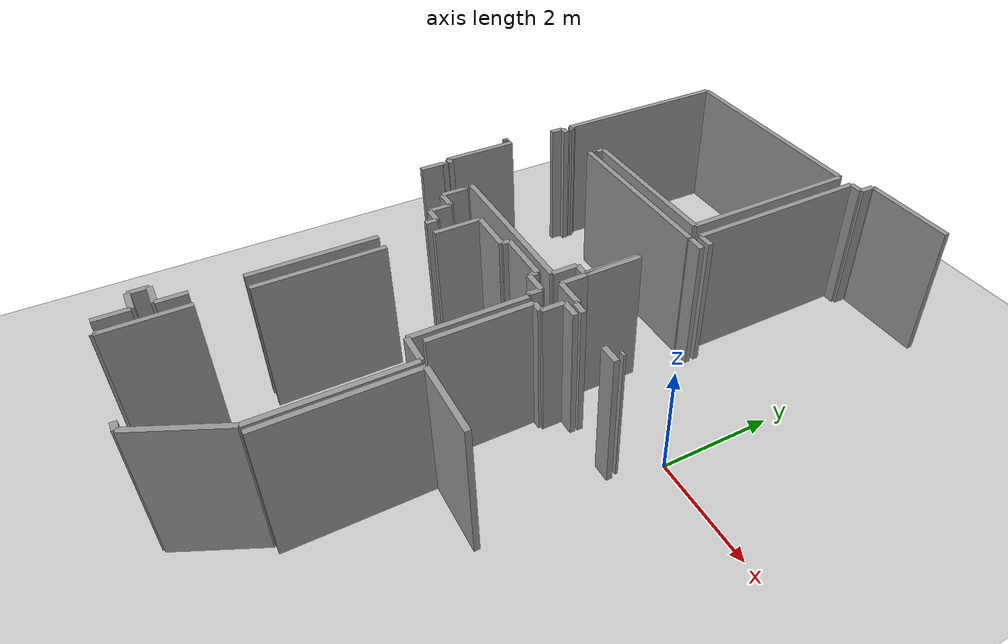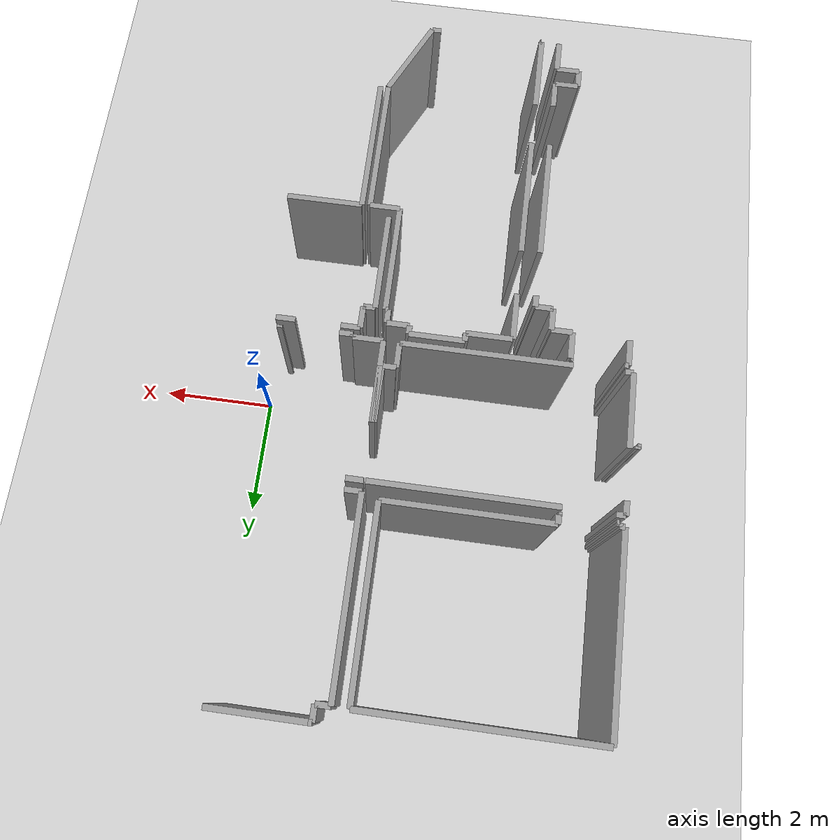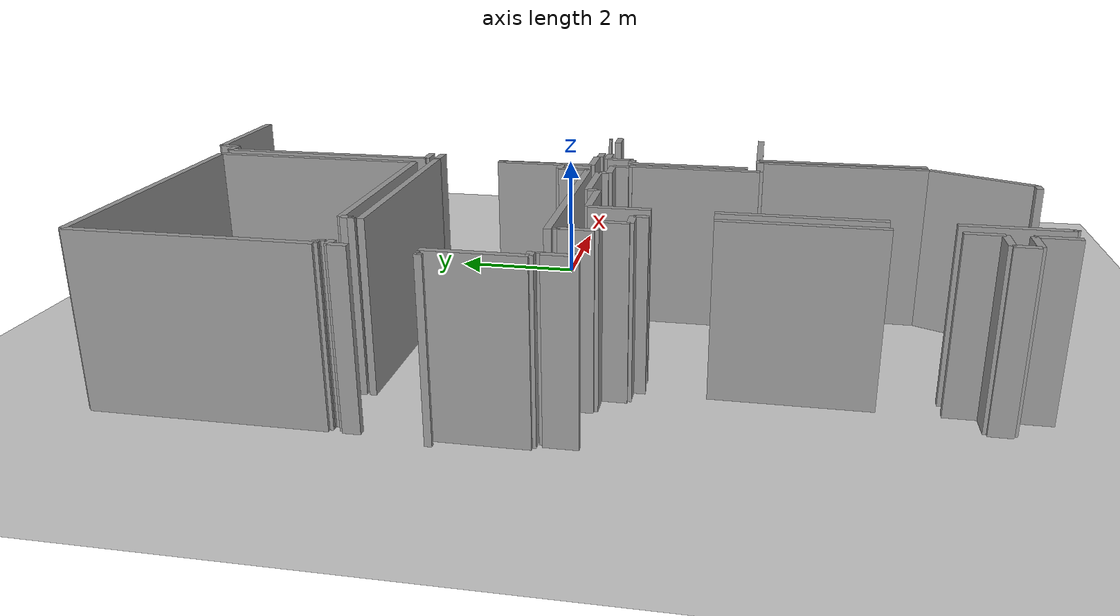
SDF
<sdf version="1.6">
 <world name="default">
  <model name="ground_plane">
   <static>1</static>
   <link name="link">
    <collision name="collision">
     <geometry><plane><normal>0 0 1</normal><size>100 100</size></plane></geometry>
     <surface><friction><ode><mu>100</mu><mu2>50</mu2></ode></friction></surface>
    </collision>
    <visual name="visual">
     <cast_shadows>0</cast_shadows>
     <geometry><plane><normal>0 0 1</normal><size>100 100</size></plane></geometry>
     <material>
      <script><uri>file://media/materials/scripts/gazebo.material</uri><name>Gazebo/Grey</name></script>
     </material>
    </visual>
   </link>
  </model>
  <model name="0510025537_Layout1_PLAN1">
   <static>1</static>
   <link name="Wall_99">
    <collision name="Wall_99_Collision">
     <geometry><box><size>0.457456948592 0.1 2.5</size></box></geometry>
     <pose>0.228728474296 0 1.25 0 0 0</pose>
    </collision>
    <visual name="Wall_99_Visual">
     <pose>0.228728474296 0 1.25 0 0 0</pose>
     <geometry><box><size>0.457456948592 0.1 2.5</size></box></geometry>
     <material>
      <script><uri>file://media/materials/scripts/gazebo.material</uri><name>Gazebo/Grey</name></script>
      <ambient>1 1 1 1</ambient>
     </material>
    </visual>
    <pose>14.1134269556 -6.77237084578 0 0 0 1.57079632679</pose>
   </link>
   <link name="Wall_100">
    <collision name="Wall_100_Collision">
     <geometry><box><size>0.0628455232891 0.1 2.5</size></box></geometry>
     <pose>0.0314227616445 0 1.25 0 0 0</pose>
    </collision>
    <visual name="Wall_100_Visual">
     <pose>0.0314227616445 0 1.25 0 0 0</pose>
     <geometry><box><size>0.0628455232891 0.1 2.5</size></box></geometry>
     <material>
      <script><uri>file://media/materials/scripts/gazebo.material</uri><name>Gazebo/Grey</name></script>
      <ambient>1 1 1 1</ambient>
     </material>
    </visual>
    <pose>14.1134269556 -6.31491389718 0 0 0 0.0</pose>
   </link>
   <link name="Wall_101">
    <collision name="Wall_101_Collision">
     <geometry><box><size>0.0469593950562 0.1 2.5</size></box></geometry>
     <pose>0.0234796975281 0 1.25 0 0 0</pose>
    </collision>
    <visual name="Wall_101_Visual">
     <pose>0.0234796975281 0 1.25 0 0 0</pose>
     <geometry><box><size>0.0469593950562 0.1 2.5</size></box></geometry>
     <material>
      <script><uri>file://media/materials/scripts/gazebo.material</uri><name>Gazebo/Grey</name></script>
      <ambient>1 1 1 1</ambient>
     </material>
    </visual>
    <pose>15.0463239499 -6.31491389718 0 0 0 0.0</pose>
   </link>
   <link name="Wall_102">
    <collision name="Wall_102_Collision">
     <geometry><box><size>0.470102306666 0.1 2.5</size></box></geometry>
     <pose>0.235051153333 0 1.25 0 0 0</pose>
    </collision>
    <visual name="Wall_102_Visual">
     <pose>0.235051153333 0 1.25 0 0 0</pose>
     <geometry><box><size>0.470102306666 0.1 2.5</size></box></geometry>
     <material>
      <script><uri>file://media/materials/scripts/gazebo.material</uri><name>Gazebo/Grey</name></script>
      <ambient>1 1 1 1</ambient>
     </material>
    </visual>
    <pose>15.093283345 -6.31491389718 0 0 0 -1.57079632679</pose>
   </link>
   <link name="Wall_103">
    <collision name="Wall_103_Collision">
     <geometry><box><size>0.361250556014 0.1 2.5</size></box></geometry>
     <pose>0.180625278007 0 1.25 0 0 0</pose>
    </collision>
    <visual name="Wall_103_Visual">
     <pose>0.180625278007 0 1.25 0 0 0</pose>
     <geometry><box><size>0.361250556014 0.1 2.5</size></box></geometry>
     <material>
      <script><uri>file://media/materials/scripts/gazebo.material</uri><name>Gazebo/Grey</name></script>
      <ambient>1 1 1 1</ambient>
     </material>
    </visual>
    <pose>15.093283345 -6.78501620385 0 0 0 0.0</pose>
   </link>
   <link name="Wall_104">
    <collision name="Wall_104_Collision">
     <geometry><box><size>0.390989388066 0.1 2.5</size></box></geometry>
     <pose>0.195494694033 0 1.25 0 0 0</pose>
    </collision>
    <visual name="Wall_104_Visual">
     <pose>0.195494694033 0 1.25 0 0 0</pose>
     <geometry><box><size>0.390989388066 0.1 2.5</size></box></geometry>
     <material>
      <script><uri>file://media/materials/scripts/gazebo.material</uri><name>Gazebo/Grey</name></script>
      <ambient>1 1 1 1</ambient>
     </material>
    </visual>
    <pose>15.454533901 -6.78501620385 0 0 0 -1.57079632679</pose>
   </link>
   <link name="Wall_105">
    <collision name="Wall_105_Collision">
     <geometry><box><size>0.308635699307 0.1 2.5</size></box></geometry>
     <pose>0.154317849654 0 1.25 0 0 0</pose>
    </collision>
    <visual name="Wall_105_Visual">
     <pose>0.154317849654 0 1.25 0 0 0</pose>
     <geometry><box><size>0.308635699307 0.1 2.5</size></box></geometry>
     <material>
      <script><uri>file://media/materials/scripts/gazebo.material</uri><name>Gazebo/Grey</name></script>
      <ambient>1 1 1 1</ambient>
     </material>
    </visual>
    <pose>15.454533901 -7.17600559192 0 0 0 0.0</pose>
   </link>
   <link name="Wall_106">
    <collision name="Wall_106_Collision">
     <geometry><box><size>0.205439410307 0.1 2.5</size></box></geometry>
     <pose>0.102719705153 0 1.25 0 0 0</pose>
    </collision>
    <visual name="Wall_106_Visual">
     <pose>0.102719705153 0 1.25 0 0 0</pose>
     <geometry><box><size>0.205439410307 0.1 2.5</size></box></geometry>
     <material>
      <script><uri>file://media/materials/scripts/gazebo.material</uri><name>Gazebo/Grey</name></script>
      <ambient>1 1 1 1</ambient>
     </material>
    </visual>
    <pose>15.7631696003 -7.17600559192 0 0 0 -1.57079632679</pose>
   </link>
   <link name="Wall_107">
    <collision name="Wall_107_Collision">
     <geometry><box><size>2.1975598907 0.1 2.5</size></box></geometry>
     <pose>1.09877994535 0 1.25 0 0 0</pose>
    </collision>
    <visual name="Wall_107_Visual">
     <pose>1.09877994535 0 1.25 0 0 0</pose>
     <geometry><box><size>2.1975598907 0.1 2.5</size></box></geometry>
     <material>
      <script><uri>file://media/materials/scripts/gazebo.material</uri><name>Gazebo/Grey</name></script>
      <ambient>1 1 1 1</ambient>
     </material>
    </visual>
    <pose>15.7631696003 -8.21019253987 0 0 0 -1.57079632679</pose>
   </link>
   <link name="Wall_108">
    <collision name="Wall_108_Collision">
     <geometry><box><size>0.491770985575 0.1 2.5</size></box></geometry>
     <pose>0.245885492788 0 1.25 0 0 0</pose>
    </collision>
    <visual name="Wall_108_Visual">
     <pose>0.245885492788 0 1.25 0 0 0</pose>
     <geometry><box><size>0.491770985575 0.1 2.5</size></box></geometry>
     <material>
      <script><uri>file://media/materials/scripts/gazebo.material</uri><name>Gazebo/Grey</name></script>
      <ambient>1 1 1 1</ambient>
     </material>
    </visual>
    <pose>15.7631696003 -11.2395501048 0 0 0 -1.57079632679</pose>
   </link>
   <link name="Wall_109">
    <collision name="Wall_109_Collision">
     <geometry><box><size>0.419775052424 0.1 2.5</size></box></geometry>
     <pose>0.209887526212 0 1.25 0 0 0</pose>
    </collision>
    <visual name="Wall_109_Visual">
     <pose>0.209887526212 0 1.25 0 0 0</pose>
     <geometry><box><size>0.419775052424 0.1 2.5</size></box></geometry>
     <material>
      <script><uri>file://media/materials/scripts/gazebo.material</uri><name>Gazebo/Grey</name></script>
      <ambient>1 1 1 1</ambient>
     </material>
    </visual>
    <pose>15.7631696003 -11.7313210904 0 0 0 3.14159265359</pose>
   </link>
   <link name="Wall_110">
    <collision name="Wall_110_Collision">
     <geometry><box><size>0.329605388575 0.1 2.5</size></box></geometry>
     <pose>0.164802694287 0 1.25 0 0 0</pose>
    </collision>
    <visual name="Wall_110_Visual">
     <pose>0.164802694287 0 1.25 0 0 0</pose>
     <geometry><box><size>0.329605388575 0.1 2.5</size></box></geometry>
     <material>
      <script><uri>file://media/materials/scripts/gazebo.material</uri><name>Gazebo/Grey</name></script>
      <ambient>1 1 1 1</ambient>
     </material>
    </visual>
    <pose>15.3433945479 -11.7313210904 0 0 0 -1.57079632679</pose>
   </link>
   <link name="Wall_111">
    <collision name="Wall_111_Collision">
     <geometry><box><size>0.414564402364 0.1 2.5</size></box></geometry>
     <pose>0.207282201182 0 1.25 0 0 0</pose>
    </collision>
    <visual name="Wall_111_Visual">
     <pose>0.207282201182 0 1.25 0 0 0</pose>
     <geometry><box><size>0.414564402364 0.1 2.5</size></box></geometry>
     <material>
      <script><uri>file://media/materials/scripts/gazebo.material</uri><name>Gazebo/Grey</name></script>
      <ambient>1 1 1 1</ambient>
     </material>
    </visual>
    <pose>15.3433945479 -12.060926479 0 0 0 0.0</pose>
   </link>
   <link name="Wall_112">
    <collision name="Wall_112_Collision">
     <geometry><box><size>0.569994280994 0.1 2.5</size></box></geometry>
     <pose>0.284997140497 0 1.25 0 0 0</pose>
    </collision>
    <visual name="Wall_112_Visual">
     <pose>0.284997140497 0 1.25 0 0 0</pose>
     <geometry><box><size>0.569994280994 0.1 2.5</size></box></geometry>
     <material>
      <script><uri>file://media/materials/scripts/gazebo.material</uri><name>Gazebo/Grey</name></script>
      <ambient>1 1 1 1</ambient>
     </material>
    </visual>
    <pose>15.7579589502 -12.060926479 0 0 0 -1.57079632679</pose>
   </link>
   <link name="Wall_126">
    <collision name="Wall_126_Collision">
     <geometry><box><size>1.40789222851 0.1 2.5</size></box></geometry>
     <pose>0.703946114253 0 1.25 0 0 0</pose>
    </collision>
    <visual name="Wall_126_Visual">
     <pose>0.703946114253 0 1.25 0 0 0</pose>
     <geometry><box><size>1.40789222851 0.1 2.5</size></box></geometry>
     <material>
      <script><uri>file://media/materials/scripts/gazebo.material</uri><name>Gazebo/Grey</name></script>
      <ambient>1 1 1 1</ambient>
     </material>
    </visual>
    <pose>16.0924572663 -12.631047849 0 0 0 1.57079632679</pose>
   </link>
   <link name="Wall_127">
    <collision name="Wall_127_Collision">
     <geometry><box><size>2.20969689267 0.1 2.5</size></box></geometry>
     <pose>1.10484844634 0 1.25 0 0 0</pose>
    </collision>
    <visual name="Wall_127_Visual">
     <pose>1.10484844634 0 1.25 0 0 0</pose>
     <geometry><box><size>2.20969689267 0.1 2.5</size></box></geometry>
     <material>
      <script><uri>file://media/materials/scripts/gazebo.material</uri><name>Gazebo/Grey</name></script>
      <ambient>1 1 1 1</ambient>
     </material>
    </visual>
    <pose>16.0924572663 -10.4054012836 0 0 0 1.57079632679</pose>
   </link>
   <link name="Wall_128">
    <collision name="Wall_128_Collision">
     <geometry><box><size>0.843807587215 0.1 2.5</size></box></geometry>
     <pose>0.421903793607 0 1.25 0 0 0</pose>
    </collision>
    <visual name="Wall_128_Visual">
     <pose>0.421903793607 0 1.25 0 0 0</pose>
     <geometry><box><size>0.843807587215 0.1 2.5</size></box></geometry>
     <material>
      <script><uri>file://media/materials/scripts/gazebo.material</uri><name>Gazebo/Grey</name></script>
      <ambient>1 1 1 1</ambient>
     </material>
    </visual>
    <pose>16.0924572663 -7.37013407892 0 0 0 1.57079632679</pose>
   </link>
   <link name="Wall_129">
    <collision name="Wall_129_Collision">
     <geometry><box><size>0.803202643452 0.1 2.5</size></box></geometry>
     <pose>0.401601321726 0 1.25 0 0 0</pose>
    </collision>
    <visual name="Wall_129_Visual">
     <pose>0.401601321726 0 1.25 0 0 0</pose>
     <geometry><box><size>0.803202643452 0.1 2.5</size></box></geometry>
     <material>
      <script><uri>file://media/materials/scripts/gazebo.material</uri><name>Gazebo/Grey</name></script>
      <ambient>1 1 1 1</ambient>
     </material>
    </visual>
    <pose>16.0924572663 -6.52632649171 0 0 0 0.0</pose>
   </link>
   <link name="Wall_130">
    <collision name="Wall_130_Collision">
     <geometry><box><size>0.143737688251 0.1 2.5</size></box></geometry>
     <pose>0.0718688441253 0 1.25 0 0 0</pose>
    </collision>
    <visual name="Wall_130_Visual">
     <pose>0.0718688441253 0 1.25 0 0 0</pose>
     <geometry><box><size>0.143737688251 0.1 2.5</size></box></geometry>
     <material>
      <script><uri>file://media/materials/scripts/gazebo.material</uri><name>Gazebo/Grey</name></script>
      <ambient>1 1 1 1</ambient>
     </material>
    </visual>
    <pose>16.8956599098 -6.52632649171 0 0 0 1.57079632679</pose>
   </link>
   <link name="Wall_131">
    <collision name="Wall_131_Collision">
     <geometry><box><size>0.968736099638 0.1 2.5</size></box></geometry>
     <pose>0.484368049819 0 1.25 0 0 0</pose>
    </collision>
    <visual name="Wall_131_Visual">
     <pose>0.484368049819 0 1.25 0 0 0</pose>
     <geometry><box><size>0.968736099638 0.1 2.5</size></box></geometry>
     <material>
      <script><uri>file://media/materials/scripts/gazebo.material</uri><name>Gazebo/Grey</name></script>
      <ambient>1 1 1 1</ambient>
     </material>
    </visual>
    <pose>16.8956599098 -6.38258880346 0 0 0 0.0</pose>
   </link>
   <link name="Wall_132">
    <collision name="Wall_132_Collision">
     <geometry><box><size>0.148757704772 0.1 2.5</size></box></geometry>
     <pose>0.0743788523861 0 1.25 0 0 0</pose>
    </collision>
    <visual name="Wall_132_Visual">
     <pose>0.0743788523861 0 1.25 0 0 0</pose>
     <geometry><box><size>0.148757704772 0.1 2.5</size></box></geometry>
     <material>
      <script><uri>file://media/materials/scripts/gazebo.material</uri><name>Gazebo/Grey</name></script>
      <ambient>1 1 1 1</ambient>
     </material>
    </visual>
    <pose>17.8643960094 -6.38258880346 0 0 0 -1.57079632679</pose>
   </link>
   <link name="Wall_133">
    <collision name="Wall_133_Collision">
     <geometry><box><size>0.397598017411 0.1 2.5</size></box></geometry>
     <pose>0.198799008706 0 1.25 0 0 0</pose>
    </collision>
    <visual name="Wall_133_Visual">
     <pose>0.198799008706 0 1.25 0 0 0</pose>
     <geometry><box><size>0.397598017411 0.1 2.5</size></box></geometry>
     <material>
      <script><uri>file://media/materials/scripts/gazebo.material</uri><name>Gazebo/Grey</name></script>
      <ambient>1 1 1 1</ambient>
     </material>
    </visual>
    <pose>17.8643960094 -6.53134650823 0 0 0 0.0</pose>
   </link>
   <link name="Wall_134">
    <collision name="Wall_134_Collision">
     <geometry><box><size>0.246107898583 0.1 2.5</size></box></geometry>
     <pose>0.123053949291 0 1.25 0 0 0</pose>
    </collision>
    <visual name="Wall_134_Visual">
     <pose>0.123053949291 0 1.25 0 0 0</pose>
     <geometry><box><size>0.246107898583 0.1 2.5</size></box></geometry>
     <material>
      <script><uri>file://media/materials/scripts/gazebo.material</uri><name>Gazebo/Grey</name></script>
      <ambient>1 1 1 1</ambient>
     </material>
    </visual>
    <pose>18.2619940268 -6.53134650823 0 0 0 -1.57079632679</pose>
   </link>
   <link name="Wall_135">
    <collision name="Wall_135_Collision">
     <geometry><box><size>0.0531867573235 0.1 2.5</size></box></geometry>
     <pose>0.0265933786618 0 1.25 0 0 0</pose>
    </collision>
    <visual name="Wall_135_Visual">
     <pose>0.0265933786618 0 1.25 0 0 0</pose>
     <geometry><box><size>0.0531867573235 0.1 2.5</size></box></geometry>
     <material>
      <script><uri>file://media/materials/scripts/gazebo.material</uri><name>Gazebo/Grey</name></script>
      <ambient>1 1 1 1</ambient>
     </material>
    </visual>
    <pose>18.2619940268 -6.77745440681 0 0 0 0.0</pose>
   </link>
   <link name="Wall_136">
    <collision name="Wall_136_Collision">
     <geometry><box><size>1.95844188854 0.1 2.5</size></box></geometry>
     <pose>0.979220944271 0 1.25 0 0 0</pose>
    </collision>
    <visual name="Wall_136_Visual">
     <pose>0.979220944271 0 1.25 0 0 0</pose>
     <geometry><box><size>1.95844188854 0.1 2.5</size></box></geometry>
     <material>
      <script><uri>file://media/materials/scripts/gazebo.material</uri><name>Gazebo/Grey</name></script>
      <ambient>1 1 1 1</ambient>
     </material>
    </visual>
    <pose>18.3151807841 -6.77745440681 0 0 0 -1.57079632679</pose>
   </link>
   <link name="Wall_137">
    <collision name="Wall_137_Collision">
     <geometry><box><size>0.538539747093 0.1 2.5</size></box></geometry>
     <pose>0.269269873546 0 1.25 0 0 0</pose>
    </collision>
    <visual name="Wall_137_Visual">
     <pose>0.269269873546 0 1.25 0 0 0</pose>
     <geometry><box><size>0.538539747093 0.1 2.5</size></box></geometry>
     <material>
      <script><uri>file://media/materials/scripts/gazebo.material</uri><name>Gazebo/Grey</name></script>
      <ambient>1 1 1 1</ambient>
     </material>
    </visual>
    <pose>18.3151807841 -8.73589629535 0 0 0 0.0</pose>
   </link>
   <link name="Wall_138">
    <collision name="Wall_138_Collision">
     <geometry><box><size>2.49901506005 0.1 2.5</size></box></geometry>
     <pose>1.24950753002 0 1.25 0 0 0</pose>
    </collision>
    <visual name="Wall_138_Visual">
     <pose>1.24950753002 0 1.25 0 0 0</pose>
     <geometry><box><size>2.49901506005 0.1 2.5</size></box></geometry>
     <material>
      <script><uri>file://media/materials/scripts/gazebo.material</uri><name>Gazebo/Grey</name></script>
      <ambient>1 1 1 1</ambient>
     </material>
    </visual>
    <pose>18.8537205312 -8.73589629535 0 0 0 -1.57079632679</pose>
   </link>
   <link name="Wall_139">
    <collision name="Wall_139_Collision">
     <geometry><box><size>1.54375211302 0.1 2.5</size></box></geometry>
     <pose>0.771876056508 0 1.25 0 0 0</pose>
    </collision>
    <visual name="Wall_139_Visual">
     <pose>0.771876056508 0 1.25 0 0 0</pose>
     <geometry><box><size>1.54375211302 0.1 2.5</size></box></geometry>
     <material>
      <script><uri>file://media/materials/scripts/gazebo.material</uri><name>Gazebo/Grey</name></script>
      <ambient>1 1 1 1</ambient>
     </material>
    </visual>
    <pose>18.8537205312 -11.2349113554 0 0 0 -2.01828067747</pose>
   </link>
   <link name="Wall_140">
    <collision name="Wall_140_Collision">
     <geometry><box><size>0.16801169219 0.1 2.5</size></box></geometry>
     <pose>0.0840058460952 0 1.25 0 0 0</pose>
    </collision>
    <visual name="Wall_140_Visual">
     <pose>0.0840058460952 0 1.25 0 0 0</pose>
     <geometry><box><size>0.16801169219 0.1 2.5</size></box></geometry>
     <material>
      <script><uri>file://media/materials/scripts/gazebo.material</uri><name>Gazebo/Grey</name></script>
      <ambient>1 1 1 1</ambient>
     </material>
    </visual>
    <pose>18.1857406113 -12.6266632776 0 0 0 3.14159265359</pose>
   </link>
   <link name="Wall_141">
    <collision name="Wall_141_Collision">
     <geometry><box><size>0.0203669829223 0.1 2.5</size></box></geometry>
     <pose>0.0101834914611 0 1.25 0 0 0</pose>
    </collision>
    <visual name="Wall_141_Visual">
     <pose>0.0101834914611 0 1.25 0 0 0</pose>
     <geometry><box><size>0.0203669829223 0.1 2.5</size></box></geometry>
     <material>
      <script><uri>file://media/materials/scripts/gazebo.material</uri><name>Gazebo/Grey</name></script>
      <ambient>1 1 1 1</ambient>
     </material>
    </visual>
    <pose>16.1123466989 -12.6266632776 0 0 0 -2.92461575348</pose>
   </link>
   <link name="Wall_163">
    <collision name="Wall_163_Collision">
     <geometry><box><size>0.0454343267459 0.1 2.5</size></box></geometry>
     <pose>0.0227171633729 0 1.25 0 0 0</pose>
    </collision>
    <visual name="Wall_163_Visual">
     <pose>0.0227171633729 0 1.25 0 0 0</pose>
     <geometry><box><size>0.0454343267459 0.1 2.5</size></box></geometry>
     <material>
      <script><uri>file://media/materials/scripts/gazebo.material</uri><name>Gazebo/Grey</name></script>
      <ambient>1 1 1 1</ambient>
     </material>
    </visual>
    <pose>13.8898138146 -4.88300184279 0 0 0 -1.57079632679</pose>
   </link>
   <link name="Wall_164">
    <collision name="Wall_164_Collision">
     <geometry><box><size>0.0542670140433 0.1 2.5</size></box></geometry>
     <pose>0.0271335070217 0 1.25 0 0 0</pose>
    </collision>
    <visual name="Wall_164_Visual">
     <pose>0.0271335070217 0 1.25 0 0 0</pose>
     <geometry><box><size>0.0542670140433 0.1 2.5</size></box></geometry>
     <material>
      <script><uri>file://media/materials/scripts/gazebo.material</uri><name>Gazebo/Grey</name></script>
      <ambient>1 1 1 1</ambient>
     </material>
    </visual>
    <pose>13.8898138146 -4.92843616954 0 0 0 3.14159265359</pose>
   </link>
   <link name="Wall_169">
    <collision name="Wall_169_Collision">
     <geometry><box><size>3.30917582767 0.1 2.5</size></box></geometry>
     <pose>1.65458791383 0 1.25 0 0 0</pose>
    </collision>
    <visual name="Wall_169_Visual">
     <pose>1.65458791383 0 1.25 0 0 0</pose>
     <geometry><box><size>3.30917582767 0.1 2.5</size></box></geometry>
     <material>
      <script><uri>file://media/materials/scripts/gazebo.material</uri><name>Gazebo/Grey</name></script>
      <ambient>1 1 1 1</ambient>
     </material>
    </visual>
    <pose>14.024528182 -3.57550994472 0 0 0 1.57079632679</pose>
   </link>
   <link name="Wall_170">
    <collision name="Wall_170_Collision">
     <geometry><box><size>3.96358899409 0.1 2.5</size></box></geometry>
     <pose>1.98179449705 0 1.25 0 0 0</pose>
    </collision>
    <visual name="Wall_170_Visual">
     <pose>1.98179449705 0 1.25 0 0 0</pose>
     <geometry><box><size>3.96358899409 0.1 2.5</size></box></geometry>
     <material>
      <script><uri>file://media/materials/scripts/gazebo.material</uri><name>Gazebo/Grey</name></script>
      <ambient>1 1 1 1</ambient>
     </material>
    </visual>
    <pose>14.024528182 -0.266334117049 0 0 0 0.0</pose>
   </link>
   <link name="Wall_171">
    <collision name="Wall_171_Collision">
     <geometry><box><size>3.20991929847 0.1 2.5</size></box></geometry>
     <pose>1.60495964923 0 1.25 0 0 0</pose>
    </collision>
    <visual name="Wall_171_Visual">
     <pose>1.60495964923 0 1.25 0 0 0</pose>
     <geometry><box><size>3.20991929847 0.1 2.5</size></box></geometry>
     <material>
      <script><uri>file://media/materials/scripts/gazebo.material</uri><name>Gazebo/Grey</name></script>
      <ambient>1 1 1 1</ambient>
     </material>
    </visual>
    <pose>17.9881171761 -0.266334117049 0 0 0 -1.57079632679</pose>
   </link>
   <link name="Wall_172">
    <collision name="Wall_172_Collision">
     <geometry><box><size>2.8948338311 0.1 2.5</size></box></geometry>
     <pose>1.44741691555 0 1.25 0 0 0</pose>
    </collision>
    <visual name="Wall_172_Visual">
     <pose>1.44741691555 0 1.25 0 0 0</pose>
     <geometry><box><size>2.8948338311 0.1 2.5</size></box></geometry>
     <material>
      <script><uri>file://media/materials/scripts/gazebo.material</uri><name>Gazebo/Grey</name></script>
      <ambient>1 1 1 1</ambient>
     </material>
    </visual>
    <pose>17.9881171761 -3.47625341552 0 0 0 3.14159265359</pose>
   </link>
   <link name="Wall_173">
    <collision name="Wall_173_Collision">
     <geometry><box><size>0.153078731652 0.1 2.5</size></box></geometry>
     <pose>0.0765393658258 0 1.25 0 0 0</pose>
    </collision>
    <visual name="Wall_173_Visual">
     <pose>0.0765393658258 0 1.25 0 0 0</pose>
     <geometry><box><size>0.153078731652 0.1 2.5</size></box></geometry>
     <material>
      <script><uri>file://media/materials/scripts/gazebo.material</uri><name>Gazebo/Grey</name></script>
      <ambient>1 1 1 1</ambient>
     </material>
    </visual>
    <pose>15.093283345 -3.47625341552 0 0 0 -1.57079632679</pose>
   </link>
   <link name="Wall_174">
    <collision name="Wall_174_Collision">
     <geometry><box><size>0.0533773908623 0.1 2.5</size></box></geometry>
     <pose>0.0266886954311 0 1.25 0 0 0</pose>
    </collision>
    <visual name="Wall_174_Visual">
     <pose>0.0266886954311 0 1.25 0 0 0</pose>
     <geometry><box><size>0.0533773908623 0.1 2.5</size></box></geometry>
     <material>
      <script><uri>file://media/materials/scripts/gazebo.material</uri><name>Gazebo/Grey</name></script>
      <ambient>1 1 1 1</ambient>
     </material>
    </visual>
    <pose>15.093283345 -3.62933214717 0 0 0 3.14159265359</pose>
   </link>
   <link name="Wall_175">
    <collision name="Wall_175_Collision">
     <geometry><box><size>0.0487386414183 0.1 2.5</size></box></geometry>
     <pose>0.0243693207092 0 1.25 0 0 0</pose>
    </collision>
    <visual name="Wall_175_Visual">
     <pose>0.0243693207092 0 1.25 0 0 0</pose>
     <geometry><box><size>0.0487386414183 0.1 2.5</size></box></geometry>
     <material>
      <script><uri>file://media/materials/scripts/gazebo.material</uri><name>Gazebo/Grey</name></script>
      <ambient>1 1 1 1</ambient>
     </material>
    </visual>
    <pose>14.1648344665 -3.62933214717 0 0 0 3.14159265359</pose>
   </link>
   <link name="Wall_176">
    <collision name="Wall_176_Collision">
     <geometry><box><size>0.0559827158925 0.1 2.5</size></box></geometry>
     <pose>0.0279913579462 0 1.25 0 0 0</pose>
    </collision>
    <visual name="Wall_176_Visual">
     <pose>0.0279913579462 0 1.25 0 0 0</pose>
     <geometry><box><size>0.0559827158925 0.1 2.5</size></box></geometry>
     <material>
      <script><uri>file://media/materials/scripts/gazebo.material</uri><name>Gazebo/Grey</name></script>
      <ambient>1 1 1 1</ambient>
     </material>
    </visual>
    <pose>14.1160958251 -3.62933214717 0 0 0 1.57079632679</pose>
   </link>
   <link name="Wall_177">
    <collision name="Wall_177_Collision">
     <geometry><box><size>0.0915931279488 0.1 2.5</size></box></geometry>
     <pose>0.0457965639744 0 1.25 0 0 0</pose>
    </collision>
    <visual name="Wall_177_Visual">
     <pose>0.0457965639744 0 1.25 0 0 0</pose>
     <geometry><box><size>0.0915931279488 0.1 2.5</size></box></geometry>
     <material>
      <script><uri>file://media/materials/scripts/gazebo.material</uri><name>Gazebo/Grey</name></script>
      <ambient>1 1 1 1</ambient>
     </material>
    </visual>
    <pose>14.1160958251 -3.57334943128 0 0 0 -3.11800230472</pose>
   </link>
   <link name="Wall_178">
    <collision name="Wall_178_Collision">
     <geometry><box><size>1.3179131982 0.1 2.5</size></box></geometry>
     <pose>0.658956599098 0 1.25 0 0 0</pose>
    </collision>
    <visual name="Wall_178_Visual">
     <pose>0.658956599098 0 1.25 0 0 0</pose>
     <geometry><box><size>1.3179131982 0.1 2.5</size></box></geometry>
     <material>
      <script><uri>file://media/materials/scripts/gazebo.material</uri><name>Gazebo/Grey</name></script>
      <ambient>1 1 1 1</ambient>
     </material>
    </visual>
    <pose>14.022049946 -6.1990087056 0 0 0 1.57079632679</pose>
   </link>
   <link name="Wall_179">
    <collision name="Wall_179_Collision">
     <geometry><box><size>0.245726631505 0.1 2.5</size></box></geometry>
     <pose>0.122863315753 0 1.25 0 0 0</pose>
    </collision>
    <visual name="Wall_179_Visual">
     <pose>0.122863315753 0 1.25 0 0 0</pose>
     <geometry><box><size>0.245726631505 0.1 2.5</size></box></geometry>
     <material>
      <script><uri>file://media/materials/scripts/gazebo.material</uri><name>Gazebo/Grey</name></script>
      <ambient>1 1 1 1</ambient>
     </material>
    </visual>
    <pose>14.022049946 -4.00468958505 0 0 0 1.57079632679</pose>
   </link>
   <link name="Wall_180">
    <collision name="Wall_180_Collision">
     <geometry><box><size>0.15434962191 0.1 2.5</size></box></geometry>
     <pose>0.0771748109551 0 1.25 0 0 0</pose>
    </collision>
    <visual name="Wall_180_Visual">
     <pose>0.0771748109551 0 1.25 0 0 0</pose>
     <geometry><box><size>0.15434962191 0.1 2.5</size></box></geometry>
     <material>
      <script><uri>file://media/materials/scripts/gazebo.material</uri><name>Gazebo/Grey</name></script>
      <ambient>1 1 1 1</ambient>
     </material>
    </visual>
    <pose>14.022049946 -3.75896295355 0 0 0 0.0</pose>
   </link>
   <link name="Wall_181">
    <collision name="Wall_181_Collision">
     <geometry><box><size>3.19177734003 0.1 2.5</size></box></geometry>
     <pose>1.59588867001 0 1.25 0 0 0</pose>
    </collision>
    <visual name="Wall_181_Visual">
     <pose>1.59588867001 0 1.25 0 0 0</pose>
     <geometry><box><size>3.19177734003 0.1 2.5</size></box></geometry>
     <material>
      <script><uri>file://media/materials/scripts/gazebo.material</uri><name>Gazebo/Grey</name></script>
      <ambient>1 1 1 1</ambient>
     </material>
    </visual>
    <pose>15.0463239499 -3.75896295355 0 0 0 0.0</pose>
   </link>
   <link name="Wall_182">
    <collision name="Wall_182_Collision">
     <geometry><box><size>0.999745821948 0.1 2.5</size></box></geometry>
     <pose>0.499872910974 0 1.25 0 0 0</pose>
    </collision>
    <visual name="Wall_182_Visual">
     <pose>0.499872910974 0 1.25 0 0 0</pose>
     <geometry><box><size>0.999745821948 0.1 2.5</size></box></geometry>
     <material>
      <script><uri>file://media/materials/scripts/gazebo.material</uri><name>Gazebo/Grey</name></script>
      <ambient>1 1 1 1</ambient>
     </material>
    </visual>
    <pose>18.23810129 -4.75070216687 0 0 0 -1.57079632679</pose>
   </link>
   <link name="Wall_183">
    <collision name="Wall_183_Collision">
     <geometry><box><size>0.244201563195 0.1 2.5</size></box></geometry>
     <pose>0.122100781598 0 1.25 0 0 0</pose>
    </collision>
    <visual name="Wall_183_Visual">
     <pose>0.122100781598 0 1.25 0 0 0</pose>
     <geometry><box><size>0.244201563195 0.1 2.5</size></box></geometry>
     <material>
      <script><uri>file://media/materials/scripts/gazebo.material</uri><name>Gazebo/Grey</name></script>
      <ambient>1 1 1 1</ambient>
     </material>
    </visual>
    <pose>18.23810129 -5.75044798882 0 0 0 3.14159265359</pose>
   </link>
   <link name="Wall_184">
    <collision name="Wall_184_Collision">
     <geometry><box><size>0.446209569804 0.1 2.5</size></box></geometry>
     <pose>0.223104784902 0 1.25 0 0 0</pose>
    </collision>
    <visual name="Wall_184_Visual">
     <pose>0.223104784902 0 1.25 0 0 0</pose>
     <geometry><box><size>0.446209569804 0.1 2.5</size></box></geometry>
     <material>
      <script><uri>file://media/materials/scripts/gazebo.material</uri><name>Gazebo/Grey</name></script>
      <ambient>1 1 1 1</ambient>
     </material>
    </visual>
    <pose>17.9938997268 -5.75044798882 0 0 0 -1.57079632679</pose>
   </link>
   <link name="Wall_185">
    <collision name="Wall_185_Collision">
     <geometry><box><size>2.95742517634 0.1 2.5</size></box></geometry>
     <pose>1.47871258817 0 1.25 0 0 0</pose>
    </collision>
    <visual name="Wall_185_Visual">
     <pose>1.47871258817 0 1.25 0 0 0</pose>
     <geometry><box><size>2.95742517634 0.1 2.5</size></box></geometry>
     <material>
      <script><uri>file://media/materials/scripts/gazebo.material</uri><name>Gazebo/Grey</name></script>
      <ambient>1 1 1 1</ambient>
     </material>
    </visual>
    <pose>17.9938997268 -6.19665755862 0 0 0 3.14159265359</pose>
   </link>
   <link name="Wall_186">
    <collision name="Wall_186_Collision">
     <geometry><box><size>0.143248628194 0.1 2.5</size></box></geometry>
     <pose>0.071624314097 0 1.25 0 0 0</pose>
    </collision>
    <visual name="Wall_186_Visual">
     <pose>0.071624314097 0 1.25 0 0 0</pose>
     <geometry><box><size>0.143248628194 0.1 2.5</size></box></geometry>
     <material>
      <script><uri>file://media/materials/scripts/gazebo.material</uri><name>Gazebo/Grey</name></script>
      <ambient>1 1 1 1</ambient>
     </material>
    </visual>
    <pose>14.1652792781 -6.19665755862 0 0 0 -3.12517886602</pose>
   </link>
   <link name="Wall_187">
    <collision name="Wall_187_Collision">
     <geometry><box><size>3.30672936392 0.1 2.5</size></box></geometry>
     <pose>1.65336468196 0 1.25 0 0 0</pose>
    </collision>
    <visual name="Wall_187_Visual">
     <pose>1.65336468196 0 1.25 0 0 0</pose>
     <geometry><box><size>3.30672936392 0.1 2.5</size></box></geometry>
     <material>
      <script><uri>file://media/materials/scripts/gazebo.material</uri><name>Gazebo/Grey</name></script>
      <ambient>1 1 1 1</ambient>
     </material>
    </visual>
    <pose>18.2724153269 -3.574429688 0 0 0 1.57079632679</pose>
   </link>
   <link name="Wall_188">
    <collision name="Wall_188_Collision">
     <geometry><box><size>0.248586134587 0.1 2.5</size></box></geometry>
     <pose>0.124293067294 0 1.25 0 0 0</pose>
    </collision>
    <visual name="Wall_188_Visual">
     <pose>0.124293067294 0 1.25 0 0 0</pose>
     <geometry><box><size>0.248586134587 0.1 2.5</size></box></geometry>
     <material>
      <script><uri>file://media/materials/scripts/gazebo.material</uri><name>Gazebo/Grey</name></script>
      <ambient>1 1 1 1</ambient>
     </material>
    </visual>
    <pose>18.2724153269 -0.267700324077 0 0 0 0.0</pose>
   </link>
   <link name="Wall_189">
    <collision name="Wall_189_Collision">
     <geometry><box><size>0.267700324077 0.1 2.5</size></box></geometry>
     <pose>0.133850162039 0 1.25 0 0 0</pose>
    </collision>
    <visual name="Wall_189_Visual">
     <pose>0.133850162039 0 1.25 0 0 0</pose>
     <geometry><box><size>0.267700324077 0.1 2.5</size></box></geometry>
     <material>
      <script><uri>file://media/materials/scripts/gazebo.material</uri><name>Gazebo/Grey</name></script>
      <ambient>1 1 1 1</ambient>
     </material>
    </visual>
    <pose>18.5210014615 -0.267700324077 0 0 0 1.57079632679</pose>
   </link>
   <link name="Wall_190">
    <collision name="Wall_190_Collision">
     <geometry><box><size>0.0615110885175 0.1 2.5</size></box></geometry>
     <pose>0.0307555442588 0 1.25 0 0 0</pose>
    </collision>
    <visual name="Wall_190_Visual">
     <pose>0.0307555442588 0 1.25 0 0 0</pose>
     <geometry><box><size>0.0615110885175 0.1 2.5</size></box></geometry>
     <material>
      <script><uri>file://media/materials/scripts/gazebo.material</uri><name>Gazebo/Grey</name></script>
      <ambient>1 1 1 1</ambient>
     </material>
    </visual>
    <pose>18.5210014615 -0.0 0 0 0 0.0</pose>
   </link>
   <link name="Wall_191">
    <collision name="Wall_191_Collision">
     <geometry><box><size>1.61307746076 0.1 2.5</size></box></geometry>
     <pose>0.806538730381 0 1.25 0 0 0</pose>
    </collision>
    <visual name="Wall_191_Visual">
     <pose>0.806538730381 0 1.25 0 0 0</pose>
     <geometry><box><size>1.61307746076 0.1 2.5</size></box></geometry>
     <material>
      <script><uri>file://media/materials/scripts/gazebo.material</uri><name>Gazebo/Grey</name></script>
      <ambient>1 1 1 1</ambient>
     </material>
    </visual>
    <pose>18.58251255 -0.0 0 0 0 0.0</pose>
   </link>
   <link name="Wall_196">
    <collision name="Wall_196_Collision">
     <geometry><box><size>0.289066007823 0.1 2.5</size></box></geometry>
     <pose>0.144533003912 0 1.25 0 0 0</pose>
    </collision>
    <visual name="Wall_196_Visual">
     <pose>0.144533003912 0 1.25 0 0 0</pose>
     <geometry><box><size>0.289066007823 0.1 2.5</size></box></geometry>
     <material>
      <script><uri>file://media/materials/scripts/gazebo.material</uri><name>Gazebo/Grey</name></script>
      <ambient>1 1 1 1</ambient>
     </material>
    </visual>
    <pose>18.5614793163 -3.57334943128 0 0 0 -3.13785558591</pose>
   </link>
   <link name="Wall_197">
    <collision name="Wall_197_Collision">
     <geometry><box><size>1.76876151744 0.1 2.5</size></box></geometry>
     <pose>0.884380758721 0 1.25 0 0 0</pose>
    </collision>
    <visual name="Wall_197_Visual">
     <pose>0.884380758721 0 1.25 0 0 0</pose>
     <geometry><box><size>1.76876151744 0.1 2.5</size></box></geometry>
     <material>
      <script><uri>file://media/materials/scripts/gazebo.material</uri><name>Gazebo/Grey</name></script>
      <ambient>1 1 1 1</ambient>
     </material>
    </visual>
    <pose>18.4922793417 -8.54894833831 0 0 0 1.57079632679</pose>
   </link>
   <link name="Wall_198">
    <collision name="Wall_198_Collision">
     <geometry><box><size>0.205820677385 0.1 2.5</size></box></geometry>
     <pose>0.102910338692 0 1.25 0 0 0</pose>
    </collision>
    <visual name="Wall_198_Visual">
     <pose>0.102910338692 0 1.25 0 0 0</pose>
     <geometry><box><size>0.205820677385 0.1 2.5</size></box></geometry>
     <material>
      <script><uri>file://media/materials/scripts/gazebo.material</uri><name>Gazebo/Grey</name></script>
      <ambient>1 1 1 1</ambient>
     </material>
    </visual>
    <pose>18.4922793417 -6.78018682087 0 0 0 0.0</pose>
   </link>
   <link name="Wall_199">
    <collision name="Wall_199_Collision">
     <geometry><box><size>0.39994916439 0.1 2.5</size></box></geometry>
     <pose>0.199974582195 0 1.25 0 0 0</pose>
    </collision>
    <visual name="Wall_199_Visual">
     <pose>0.199974582195 0 1.25 0 0 0</pose>
     <geometry><box><size>0.39994916439 0.1 2.5</size></box></geometry>
     <material>
      <script><uri>file://media/materials/scripts/gazebo.material</uri><name>Gazebo/Grey</name></script>
      <ambient>1 1 1 1</ambient>
     </material>
    </visual>
    <pose>18.6981000191 -6.78018682087 0 0 0 1.57079632679</pose>
   </link>
   <link name="Wall_200">
    <collision name="Wall_200_Collision">
     <geometry><box><size>0.335959839868 0.1 2.5</size></box></geometry>
     <pose>0.167979919934 0 1.25 0 0 0</pose>
    </collision>
    <visual name="Wall_200_Visual">
     <pose>0.167979919934 0 1.25 0 0 0</pose>
     <geometry><box><size>0.335959839868 0.1 2.5</size></box></geometry>
     <material>
      <script><uri>file://media/materials/scripts/gazebo.material</uri><name>Gazebo/Grey</name></script>
      <ambient>1 1 1 1</ambient>
     </material>
    </visual>
    <pose>18.6981000191 -6.38023765648 0 0 0 0.0</pose>
   </link>
   <link name="Wall_201">
    <collision name="Wall_201_Collision">
     <geometry><box><size>0.336023384381 0.1 2.5</size></box></geometry>
     <pose>0.16801169219 0 1.25 0 0 0</pose>
    </collision>
    <visual name="Wall_201_Visual">
     <pose>0.16801169219 0 1.25 0 0 0</pose>
     <geometry><box><size>0.336023384381 0.1 2.5</size></box></geometry>
     <material>
      <script><uri>file://media/materials/scripts/gazebo.material</uri><name>Gazebo/Grey</name></script>
      <ambient>1 1 1 1</ambient>
     </material>
    </visual>
    <pose>19.8213128296 -6.38023765648 0 0 0 0.0</pose>
   </link>
   <link name="Wall_205">
    <collision name="Wall_205_Collision">
     <geometry><box><size>2.50708521319 0.1 2.5</size></box></geometry>
     <pose>1.2535426066 0 1.25 0 0 0</pose>
    </collision>
    <visual name="Wall_205_Visual">
     <pose>1.2535426066 0 1.25 0 0 0</pose>
     <geometry><box><size>2.50708521319 0.1 2.5</size></box></geometry>
     <material>
      <script><uri>file://media/materials/scripts/gazebo.material</uri><name>Gazebo/Grey</name></script>
      <ambient>1 1 1 1</ambient>
     </material>
    </visual>
    <pose>18.9977123975 -11.2283027261 0 0 0 1.57079632679</pose>
   </link>
   <link name="Wall_206">
    <collision name="Wall_206_Collision">
     <geometry><box><size>1.34962191015 0.1 2.5</size></box></geometry>
     <pose>0.674810955074 0 1.25 0 0 0</pose>
    </collision>
    <visual name="Wall_206_Visual">
     <pose>0.674810955074 0 1.25 0 0 0</pose>
     <geometry><box><size>1.34962191015 0.1 2.5</size></box></geometry>
     <material>
      <script><uri>file://media/materials/scripts/gazebo.material</uri><name>Gazebo/Grey</name></script>
      <ambient>1 1 1 1</ambient>
     </material>
    </visual>
    <pose>18.9977123975 -8.72121751287 0 0 0 0.0</pose>
   </link>
   <link name="Wall_390">
    <collision name="Wall_390_Collision">
     <geometry><box><size>0.301010357756 0.1 2.5</size></box></geometry>
     <pose>0.150505178878 0 1.25 0 0 0</pose>
    </collision>
    <visual name="Wall_390_Visual">
     <pose>0.150505178878 0 1.25 0 0 0</pose>
     <geometry><box><size>0.301010357756 0.1 2.5</size></box></geometry>
     <material>
      <script><uri>file://media/materials/scripts/gazebo.material</uri><name>Gazebo/Grey</name></script>
      <ambient>1 1 1 1</ambient>
     </material>
    </visual>
    <pose>18.2686662007 -3.75813687488 0 0 0 0.0</pose>
   </link>
   <link name="Wall_406">
    <collision name="Wall_406_Collision">
     <geometry><box><size>0.0465781279786 0.1 2.5</size></box></geometry>
     <pose>0.0232890639893 0 1.25 0 0 0</pose>
    </collision>
    <visual name="Wall_406_Visual">
     <pose>0.0232890639893 0 1.25 0 0 0</pose>
     <geometry><box><size>0.0465781279786 0.1 2.5</size></box></geometry>
     <material>
      <script><uri>file://media/materials/scripts/gazebo.material</uri><name>Gazebo/Grey</name></script>
      <ambient>1 1 1 1</ambient>
     </material>
    </visual>
    <pose>20.0685009849 -6.19945351719 0 0 0 -1.57079632679</pose>
   </link>
   <link name="Wall_408">
    <collision name="Wall_408_Collision">
     <geometry><box><size>0.240134714367 0.1 2.5</size></box></geometry>
     <pose>0.120067357184 0 1.25 0 0 0</pose>
    </collision>
    <visual name="Wall_408_Visual">
     <pose>0.120067357184 0 1.25 0 0 0</pose>
     <geometry><box><size>0.240134714367 0.1 2.5</size></box></geometry>
     <material>
      <script><uri>file://media/materials/scripts/gazebo.material</uri><name>Gazebo/Grey</name></script>
      <ambient>1 1 1 1</ambient>
     </material>
    </visual>
    <pose>19.0411768444 -6.24603164517 0 0 0 3.14159265359</pose>
   </link>
   <link name="Wall_409">
    <collision name="Wall_409_Collision">
     <geometry><box><size>0.0464510389528 0.1 2.5</size></box></geometry>
     <pose>0.0232255194764 0 1.25 0 0 0</pose>
    </collision>
    <visual name="Wall_409_Visual">
     <pose>0.0232255194764 0 1.25 0 0 0</pose>
     <geometry><box><size>0.0464510389528 0.1 2.5</size></box></geometry>
     <material>
      <script><uri>file://media/materials/scripts/gazebo.material</uri><name>Gazebo/Grey</name></script>
      <ambient>1 1 1 1</ambient>
     </material>
    </visual>
    <pose>18.80104213 -6.24603164517 0 0 0 1.57079632679</pose>
   </link>
   <link name="Wall_410">
    <collision name="Wall_410_Collision">
     <geometry><box><size>0.528626803076 0.1 2.5</size></box></geometry>
     <pose>0.264313401538 0 1.25 0 0 0</pose>
    </collision>
    <visual name="Wall_410_Visual">
     <pose>0.264313401538 0 1.25 0 0 0</pose>
     <geometry><box><size>0.528626803076 0.1 2.5</size></box></geometry>
     <material>
      <script><uri>file://media/materials/scripts/gazebo.material</uri><name>Gazebo/Grey</name></script>
      <ambient>1 1 1 1</ambient>
     </material>
    </visual>
    <pose>18.80104213 -6.19958060621 0 0 0 3.14159265359</pose>
   </link>
   <link name="Wall_411">
    <collision name="Wall_411_Collision">
     <geometry><box><size>0.455042257101 0.1 2.5</size></box></geometry>
     <pose>0.227521128551 0 1.25 0 0 0</pose>
    </collision>
    <visual name="Wall_411_Visual">
     <pose>0.227521128551 0 1.25 0 0 0</pose>
     <geometry><box><size>0.455042257101 0.1 2.5</size></box></geometry>
     <material>
      <script><uri>file://media/materials/scripts/gazebo.material</uri><name>Gazebo/Grey</name></script>
      <ambient>1 1 1 1</ambient>
     </material>
    </visual>
    <pose>18.2724153269 -6.19958060621 0 0 0 1.57079632679</pose>
   </link>
   <link name="Wall_412">
    <collision name="Wall_412_Collision">
     <geometry><box><size>0.999555188409 0.1 2.5</size></box></geometry>
     <pose>0.499777594205 0 1.25 0 0 0</pose>
    </collision>
    <visual name="Wall_412_Visual">
     <pose>0.499777594205 0 1.25 0 0 0</pose>
     <geometry><box><size>0.999555188409 0.1 2.5</size></box></geometry>
     <material>
      <script><uri>file://media/materials/scripts/gazebo.material</uri><name>Gazebo/Grey</name></script>
      <ambient>1 1 1 1</ambient>
     </material>
    </visual>
    <pose>18.2724153269 -5.74453834911 0 0 0 1.57079632679</pose>
   </link>
   <pose>-20.35 5.48517824236 0 0 0 0</pose>
  </model>
 </world>
</sdf>
